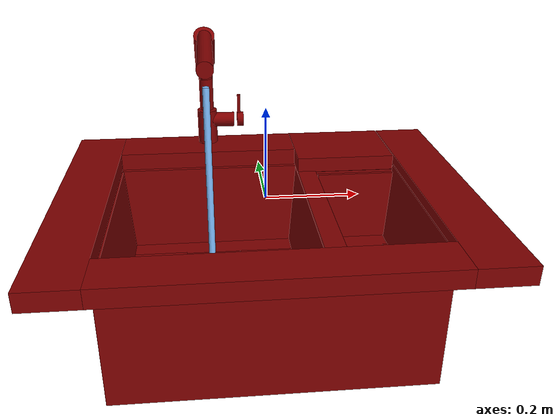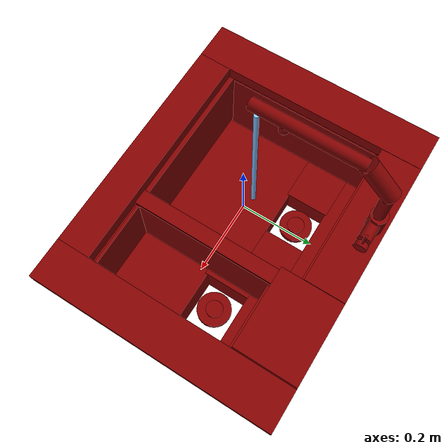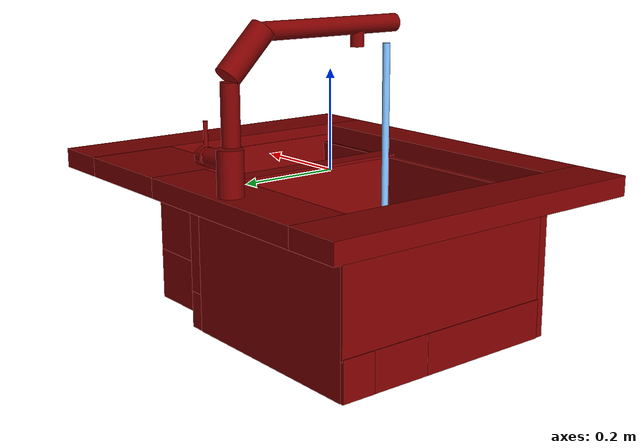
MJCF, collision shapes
<mujoco model="model">
  <compiler angle="radian"/>
  <asset>
    <mesh file="visuals/handle.obj" name="handle_vis"/>
    <mesh file="visuals/Body001.obj" name="Body001_vis"/>
    <mesh file="visuals/Funnel001.obj" name="Funnel001_vis"/>
    <mesh file="visuals/Funnel002.obj" name="Funnel002_vis"/>
    <mesh file="visuals/spout.obj" name="spout_vis"/>
    <texture file="visuals/T_BC001.png" name="Body001_material" type="2d"/>
    <material name="Body001_material" rgba="1 1 1 1.0" texture="Body001_material" shininess="0.5984481573104858" specular="0.7381"/>
    <texture file="visuals/T_BC001.png" name="handle_material" type="2d"/>
    <material name="handle_material" rgba="1 1 1 1.0" texture="handle_material" shininess="0.5984481573104858" specular="1"/>
    <texture file="visuals/T_BC001.png" name="Funnel001_material" type="2d"/>
    <material name="Funnel001_material" rgba="1 1 1 1.0" texture="Funnel001_material" shininess="0.5984481573104858" specular="1"/>
    <texture file="visuals/T_BC001.png" name="Funnel002_material" type="2d"/>
    <material name="Funnel002_material" rgba="1 1 1 1.0" texture="Funnel002_material" shininess="0.5984481573104858" specular="1"/>
    <texture file="visuals/T_BC001.png" name="spout_material" type="2d"/>
    <material name="spout_material" rgba="1 1 1 1.0" texture="spout_material" shininess="0.5984481573104858" specular="1"/>
  </asset>
  <default>
    <default class="visual">
      <geom conaffinity="0" contype="0" group="1" type="mesh"/>
    </default>
    <default class="collision">
      <geom group="0" rgba="0.5 0 0 0.5"/>
    </default>
    <default class="spawn">
      <geom group="0" rgba="1 1 1 0.5" contype="0" conaffinity="0"/>
      <site group="0" rgba="1 1 1 0.5"/>
    </default>
    <default class="region">
      <geom group="1" conaffinity="0" contype="0" rgba="0 1 0 0"/>
    </default>
  </default>
  <worldbody>
    <body>
      <body name="object">
        <geom mesh="Body001_vis" type="mesh" solimp="0.998 0.998 0.001" solref="0.001 1" density="100" friction="0.95 0.3 0.1" class="visual" material="Body001_material"/>
        <geom class="collision" type="box" pos="-0.387134 -0.000000 -0.001997" size="0.05620851740241051 0.3486928939819336 0.019629687070846558" quat="1.0 0.0 0.0 0.0"/>
        <geom class="collision" type="box" pos="0.385778 0.000000 -0.001997" size="0.05756451189517975 0.3486928641796112 0.019629687070846558" quat="1.0 0.0 0.0 0.0"/>
        <geom class="collision" type="box" pos="-0.001669 -0.300752 -0.001997" size="0.330101877450943 0.04789552837610245 0.019629687070846558" quat="1.0 0.0 0.0 0.0"/>
        <geom class="collision" type="box" pos="0.209520 0.258873 -0.001997" size="0.11563745886087418 0.08982021361589432 0.019629687070846558" quat="1.0 0.0 0.0 0.0"/>
        <geom class="collision" type="box" pos="-0.118783 0.290702 -0.001997" size="0.21166878938674927 0.05799110233783722 0.019629687070846558" quat="1.0 0.0 0.0 0.0"/>
        <geom class="collision" type="box" pos="-0.114386 0.235108 -0.167015" size="0.21606576442718506 0.009795859456062317 0.1440252661705017" quat="1.0 0.0 0.0 0.0"/>
        <geom class="collision" type="box" pos="-0.002268 -0.250086 -0.167015" size="0.3336304724216461 0.009662470780313015 0.1440252661705017" quat="1.0 0.0 0.0 0.0"/>
        <geom class="collision" type="box" pos="-0.326130 -0.005701 -0.127693" size="0.00564580736681819 0.2295820564031601 0.10468222945928574" quat="0.9994223117828369 7.358164095490674e-16 -0.03398636728525162 -4.566368172476132e-09"/>
        <geom class="collision" type="box" pos="0.093892 -0.005701 -0.125526" size="0.00564580736681819 0.2295820564031601 0.10468222945928574" quat="0.9994223117828369 6.759334565792341e-16 0.033986371010541916 4.566368616565342e-09"/>
        <geom class="collision" type="box" pos="0.115375 -0.041417 -0.018508" size="0.021492905914783478 0.21219207346439362 0.0031190291047096252" quat="1.0 0.0 0.0 0.0"/>
        <geom class="collision" type="box" pos="0.142535 -0.041417 -0.110004" size="0.0014873591717332602 0.21219207346439362 0.08770085126161575" quat="0.9994829893112183 0.0 -0.032152947038412094 0.0"/>
        <geom class="collision" type="box" pos="0.323892 -0.041417 -0.102011" size="0.0035827455576509237 0.21219207346439362 0.09578000009059906" quat="0.9994829893112183 0.0 0.032152947038412094 0.0"/>
        <geom class="collision" type="box" pos="0.235132 -0.251510 -0.108420" size="0.09239033609628677 0.004911359399557114 0.08543051034212112" quat="0.9999428987503052 0.010686147026717663 0.0 0.0"/>
        <geom class="collision" type="box" pos="0.235132 0.162454 -0.108420" size="0.09239033609628677 0.004911359399557114 0.08543051034212112" quat="0.9999428987503052 -0.010686146095395088 -0.0 0.0"/>
        <geom class="collision" type="box" pos="-0.113116 -0.096978 -0.270814" size="0.22500692307949066 0.14545109868049622 0.03999025747179985" quat="1.0 0.0 0.0 0.0"/>
        <geom class="collision" type="box" pos="0.221665 -0.130706 -0.254626" size="0.10982964187860489 0.11064940690994263 0.05641452223062515" quat="1.0 0.0 0.0 0.0"/>
        <geom class="collision" type="box" pos="0.221665 0.154399 -0.254626" size="0.10982964187860489 0.041716475039720535 0.05641452223062515" quat="1.0 0.0 0.0 0.0"/>
        <geom class="collision" type="box" pos="-0.101480 0.208401 -0.270932" size="0.23664210736751556 0.035329483449459076 0.040108319371938705" quat="1.0 0.0 0.0 0.0"/>
        <geom class="collision" type="box" pos="0.031521 0.110125 -0.270932" size="0.0803699940443039 0.06408362090587616 0.040108319371938705" quat="1.0 0.0 0.0 0.0"/>
        <geom class="collision" type="box" pos="-0.260838 0.110125 -0.270932" size="0.07693104445934296 0.06703885644674301 0.0401083342730999" quat="1.0 0.0 0.0 0.0"/>
        <geom class="collision" type="cylinder" pos="-0.118934 0.313803 0.059211" size="0.023981241509318352 0.04181399941444397" quat="1.0 0.0 0.0 0.0"/>
        <geom class="collision" type="cylinder" pos="-0.079459 0.311459 0.074884" size="0.017730290070176125 0.027539391070604324" quat="0.7071068286895752 -0.0 0.7071067690849304 0.0"/>
        <geom class="collision" type="box" pos="-0.333797 0.001824 -0.127400" size="0.0025114272721111774 0.2431793361902237 0.10811250656843185" quat="1.0 0.0 0.0 0.0"/>
        <geom class="collision" type="box" pos="0.316367 0.043559 -0.253145" size="0.014440176077187061 0.07015940546989441 0.05789489671587944" quat="1.0 0.0 0.0 0.0"/>
        <geom class="collision" type="box" pos="0.135839 0.043559 -0.253145" size="0.026926381513476372 0.07015940546989441 0.05789489671587944" quat="1.0 0.0 0.0 0.0"/>
        <geom class="collision" type="box" pos="0.221665 0.182152 -0.110031" size="0.10982964187860489 0.013963666744530201 0.09279049932956696" quat="1.0 0.0 0.0 0.0"/>
        <geom class="collision" type="box" pos="0.114816 0.208401 -0.137460" size="0.020346248522400856 0.035329483449459076 0.09865998476743698" quat="1.0 0.0 0.0 0.0"/>
        <body name="handle">
          <joint axis="1.0 0.0 0.0" pos="-0.039421 0.311459 0.074884" limited="true" name="handle_joint_hinge_0" type="hinge" range="-0.7853981633974483 0.7853981633974483" damping="1" frictionloss="1" armature=".01" stiffness="0.05"/>
          <joint axis="0.0 1.0 0.0" pos="-0.039421 0.311459 0.074884" limited="true" name="handle_joint_hinge_1" type="hinge" range="0.0 0.17453292519943295" damping="1" frictionloss="1" armature=".01" stiffness="0.05"/>
          <geom mesh="handle_vis" type="mesh" solimp="0.998 0.998 0.001" solref="0.001 1" density="100" friction="0.95 0.3 0.1" class="visual" material="handle_material"/>
          <geom class="collision" type="cylinder" pos="-0.036221 0.311459 0.074884" size="0.017730290070176125 0.007796162273734808" quat="0.7071068286895752 -0.0 0.7071067690849304 0.0"/>
          <geom class="collision" type="cylinder" pos="-0.039421 0.311459 0.113377" size="0.004059493541717529 0.024806829169392586" quat="1.0 0.0 0.0 0.0"/>
        </body>
        <body name="Funnel001">
          <joint axis="0.0 0.0 1.0" pos="-0.117617 0.112346 -0.259044" limited="true" name="Funnel001_joint" range="0.0 0.05" type="slide" damping="1" frictionloss="1" armature=".01" stiffness="0.05"/>
          <geom mesh="Funnel001_vis" type="mesh" solimp="0.998 0.998 0.001" solref="0.001 1" density="100" friction="0.95 0.3 0.1" class="visual" material="Funnel001_material"/>
          <geom class="collision" type="cylinder" pos="-0.117326 0.112594 -0.262746" size="0.049130965024232864 0.007603075355291367" quat="1.0 0.0 0.0 0.0"/>
          <geom class="collision" type="cylinder" pos="-0.117326 0.112594 -0.253875" size="0.025990024209022522 0.0040219868533313274" quat="1.0 0.0 0.0 0.0"/>
        </body>
        <body name="Funnel002">
          <joint axis="0.0 0.0 1.0" pos="0.233454 0.047351 -0.222380" limited="true" name="Funnel002_joint" range="0.0 0.05" type="slide" damping="1" frictionloss="1" armature=".01" stiffness="0.05"/>
          <geom mesh="Funnel002_vis" type="mesh" solimp="0.998 0.998 0.001" solref="0.001 1" density="100" friction="0.95 0.3 0.1" class="visual" material="Funnel002_material"/>
          <geom class="collision" type="cylinder" pos="0.233149 0.047322 -0.225924" size="0.049130965024232864 0.007624684367328882" quat="1.0 0.0 0.0 0.0"/>
          <geom class="collision" type="cylinder" pos="0.233149 0.048295 -0.216470" size="0.02472023293375969 0.0038363581988960505" quat="1.0 0.0 0.0 0.0"/>
        </body>
        <body name="spout">
          <joint axis="0.0 0.0 1.0" pos="-0.119190 0.312203 0.167196" limited="true" name="spout_joint" range="-0.6108652381980153 0.9599310885968813" type="hinge" damping="1" frictionloss="1" armature=".01" stiffness="0.05"/>
          <site type="cylinder" rgba="0.5 0.75 1 1" size="0.006951053626835346 0.24638749659061432" pos="-0.118757 -0.038922 0.011049" name="water"/>
          <geom mesh="spout_vis" type="mesh" solimp="0.998 0.998 0.001" solref="0.001 1" density="100" friction="0.95 0.3 0.1" class="visual" material="spout_material"/>
          <geom class="collision" type="cylinder" pos="-0.119101 0.093156 0.294571" size="0.01676228456199169 0.14992904663085938" quat="0.7071068286895752 0.7071067690849304 -1.5700924318127872e-16 -5.9269340452702814e-24"/>
          <geom class="collision" type="cylinder" pos="-0.119276 0.311388 0.159739" size="0.01676228456199169 0.05516040325164795" quat="1.0 0.0 0.0 0.0"/>
          <geom class="collision" type="cylinder" pos="-0.119276 0.033594 0.269885" size="0.012737974524497986 0.014642545022070408" quat="1.0 0.0 0.0 0.0"/>
          <geom class="collision" type="cylinder" pos="-0.119276 0.279155 0.260891" size="0.023868028074502945 0.053261227905750275" quat="0.9264945983886719 0.37630802392959595 -8.355716650356636e-17 5.496069262891238e-24"/>
        </body>
        <geom class="region" name="reg_main" type="box" pos="0.0 0.0 -0.14658600000000002" size="0.443343 0.348693 0.164218"/>
        <geom class="region" name="reg_basin_left" type="box" pos="-0.12715500000000002 -0.022511000000000003 -0.105672" size="0.202191 0.226344 0.120658"/>
        <geom class="region" name="reg_basin_right" type="box" pos="0.2233605 -0.0432 -0.0894955" size="0.08809049999999999 0.214302 0.1043425"/>
      </body>
    </body>
  </worldbody>
  <actuator>
    <motor name="handle_joint_hinge_0_actuator" joint="handle_joint_hinge_0" gear="10"/>
    <motor name="handle_joint_hinge_1_actuator" joint="handle_joint_hinge_1" gear="10"/>
    <motor name="Funnel001_joint_actuator" joint="Funnel001_joint" gear="10"/>
    <motor name="Funnel002_joint_actuator" joint="Funnel002_joint" gear="10"/>
    <motor name="spout_joint_actuator" joint="spout_joint" gear="10"/>
  </actuator>
</mujoco>
